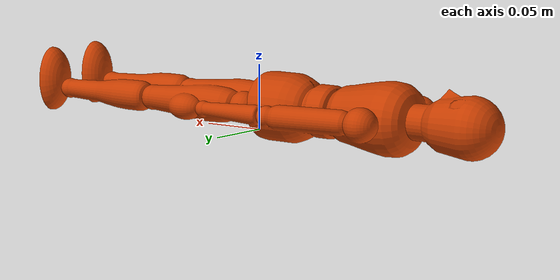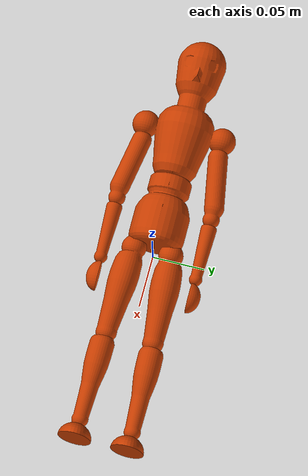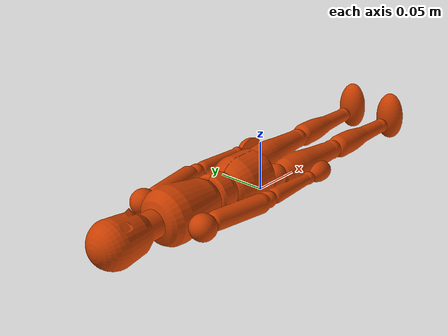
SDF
<?xml version="1.0" ?>
<sdf version="1.6">
  <model name="victim_dae">
    <static>true</static>
    <link name="link">
      <collision name="collision">
        <geometry>
          <mesh>
            <uri>model://victim/meshes/victim.dae</uri>
            <scale>0.003 0.003 0.003</scale>
          </mesh>
        </geometry>
      </collision>
      <visual name="visual">
        <geometry>
          <mesh>
            <uri>model://victim/meshes/victim.dae</uri>
            <scale>0.003 0.003 0.003</scale>
          </mesh>
        </geometry>
      </visual>
    </link>
  </model>
</sdf>
